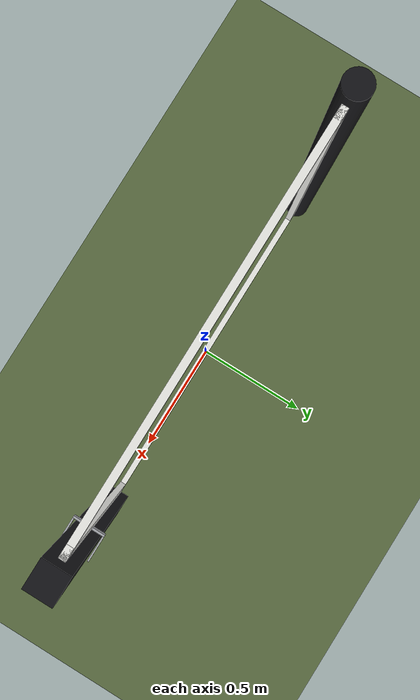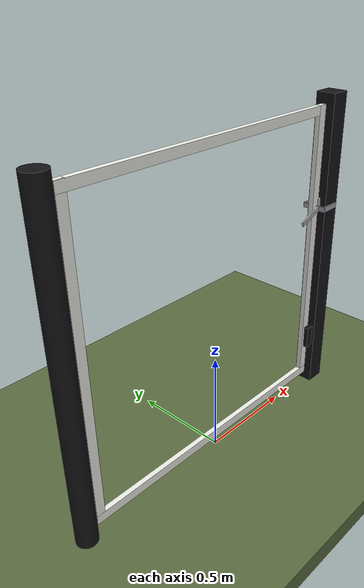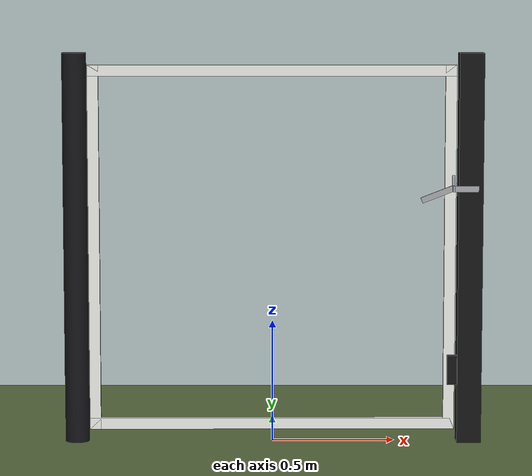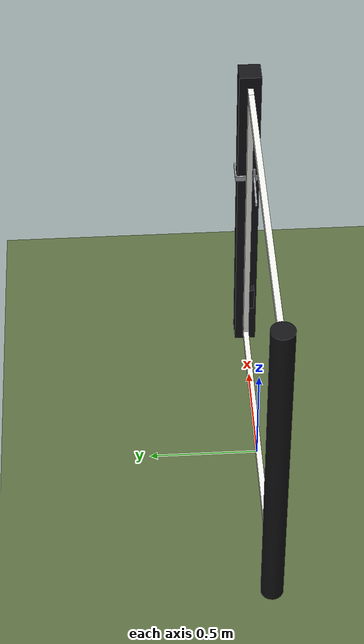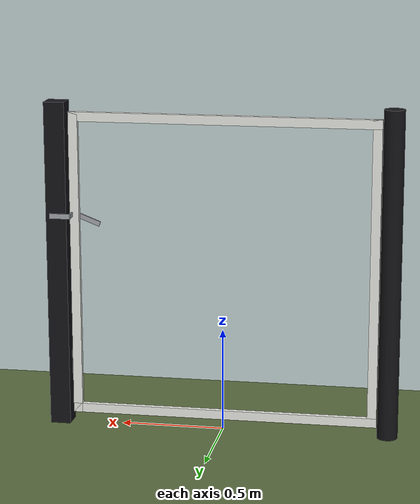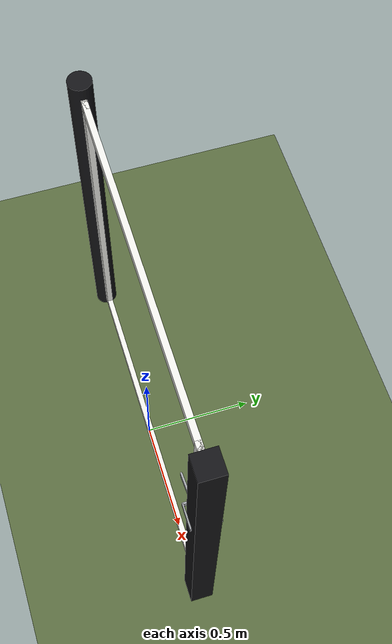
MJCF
<?xml version="1.0" ?>
<mujoco model="db0434_gate_swing_minimal">
  <compiler angle="radian" meshdir="../../hardware" texturedir="../../textures" autolimits="true" inertiafromgeom="false"/>
  <option timestep="0.002" integrator="implicitfast" cone="elliptic" impratio="10" noslip_iterations="3">
    <flag multiccd="enable"/>
  </option>
  <size memory="16M"/>
  <default>
    <geom condim="4" solref="0.005 1" solimp="0.95 0.99 0.001"/>
    <joint solreflimit="0.005 1" solimplimit="0.95 0.99 0.001"/>
    <tendon solreflimit="0.005 1"/>
    <equality solref="0.002 1"/>
  </default>
  <visual>
    <headlight ambient="0.4 0.4 0.4" diffuse="0.7 0.7 0.7" specular="0.2 0.2 0.2"/>
    <quality shadowsize="4096"/>
    <map znear="0.01" zfar="60"/>
  </visual>
  <asset>
    <material name="mat_floor" rgba="0.35 0.42 0.25 1" specular="0.2" shininess="0.15" reflectance="0"/>
    <material name="mat_wall" rgba="0.78 0.76 0.7 1" specular="0.2" shininess="0.1" reflectance="0"/>
    <material name="mat_leaf" rgba="0.93 0.93 0.91 1" specular="0.23" shininess="0.54" reflectance="0.02"/>
    <material name="mat_hinge" rgba="0.65 0.66 0.68 1" specular="0.74" shininess="0.5" reflectance="0.36"/>
    <material name="mat_op_steel_galvanized" rgba="0.65 0.66 0.68 1" specular="0.74" shininess="0.5" reflectance="0.36"/>
    <material name="mat_frame" rgba="0.08 0.08 0.09 1" specular="0.56" shininess="0.25" reflectance="0.24"/>
    <texture name="skybox" type="skybox" builtin="gradient" rgb1="0.6 0.7 0.85" rgb2="0.9 0.92 0.95" width="256" height="256"/>
  </asset>
  <worldbody>
    <light name="sun" pos="1.5 -2.5 4" dir="-0.3 0.5 -0.8" directional="true" diffuse="0.8 0.8 0.8" specular="0.3 0.3 0.3" castshadow="true"/>
    <light name="fill" pos="-1.5 2.5 3" dir="0.3 -0.5 -0.7" directional="true" diffuse="0.35 0.35 0.4" castshadow="false"/>
    <camera name="robot_view" pos="0 -2.05 1.334" xyaxes="1 0 0 0 0.26963 0.962964" fovy="52"/>
    <camera name="far_view" pos="0 2.05 1.334" xyaxes="-1 0 0 0 -0.26963 0.962964" fovy="52"/>
    <camera name="iso" pos="1.558 -1.722 1.662" xyaxes="0.741536 0.670913 0 -0.242917 0.268487 0.932151" fovy="46"/>
    <camera name="detail_handle" pos="0.916 -0.8245 1.385" xyaxes="0.97561 0.219512 0 -0.070934 0.315262 0.94635" fovy="38"/>
    <geom name="floor" type="box" size="6 6 0.05" pos="0 0 -0.05" material="mat_floor" group="0" contype="1" conaffinity="1" friction="0.8 0.005 0.0001" density="2400"/>
    <geom name="post_hinge" type="cylinder" size="0.05 0.8" pos="-0.806 0 0.8" material="mat_frame" group="0" contype="1" conaffinity="1" friction="0.6 0.005 0.0001" density="800"/>
    <geom name="post_latch" type="box" size="0.05 0.05 0.8" pos="0.806 0 0.8" material="mat_frame" group="0" contype="1" conaffinity="1" friction="0.6 0.005 0.0001" density="800"/>
    <geom name="gate_stop" type="box" size="0.02 0.012 0.06" pos="0.736 -0.0245 0.3" material="mat_frame" group="0" contype="1" conaffinity="1" friction="0.6 0.005 0.0001" density="800"/>
    <site name="approach_point" pos="0 -1.5 0" quat="1 0 0 0" size="0.05" rgba="0.2 0.9 0.2 0.5" group="4"/>
    <site name="goal_point" pos="0 1.5 0" quat="1 0 0 0" size="0.05" rgba="0.2 0.9 0.2 0.5" group="4"/>
    <site name="door_plane_center" pos="0 0 0.76" quat="1 0 0 0" size="0.02" rgba="0.2 0.9 0.2 0.5" group="4"/>
    <body name="leaf" pos="-0.756 0 0">
      <inertial pos="0.753 0 0.8" mass="65.199237" quat="-0.5 0.5 0.5 0.5" diaginertia="12.229442637 12.229442637 24.452093686"/>
      <joint name="leaf_hinge" type="hinge" axis="0 0 1" pos="0.003 0.05 0" limited="true" range="0 1.570796" damping="1.421431" frictionloss="8.499144" armature="0.02"/>
      <geom name="leaf_slab_col" type="box" size="0.75 0.0125 0.75" pos="0.753 0 0.8" material="mat_leaf" group="3" contype="1" conaffinity="1" rgba="0.8 0.3 0.3 0.25" friction="0.45 0.005 0.0001" density="1"/>
      <geom name="leaf_rail_b" type="box" size="0.75 0.0125 0.0225" pos="0.753 0 0.0725" material="mat_leaf" group="1" contype="0" conaffinity="0" density="1"/>
      <geom name="leaf_rail_t" type="box" size="0.75 0.0125 0.0225" pos="0.753 0 1.5275" material="mat_leaf" group="1" contype="0" conaffinity="0" density="1"/>
      <geom name="leaf_stile_h" type="box" size="0.0225 0.0125 0.75" pos="0.0255 0 0.8" material="mat_leaf" group="1" contype="0" conaffinity="0" density="1"/>
      <geom name="leaf_stile_l" type="box" size="0.0225 0.0125 0.75" pos="1.4805 0 0.8" material="mat_leaf" group="1" contype="0" conaffinity="0" density="1"/>
      <site name="leaf_edge_mid" pos="1.503 0 0.75" quat="1 0 0 0" size="0.02" rgba="0.2 0.9 0.2 0.5" group="4"/>
      <body name="leaf_fork" pos="1.363 0 1">
        <inertial pos="0.125752 -0.009183 0.043882" mass="0.210369" quat="0.981159 -0.024722 -0.116685 0.151989" diaginertia="0.000361701 0.000708802 0.000997365"/>
        <joint name="leaf_fork_hinge" type="hinge" axis="0 -1 0" limited="true" range="0 1.2" damping="0.037477" frictionloss="0.006367" armature="0.0001"/>
        <geom name="leaf_fork_arm" type="box" size="0.069176 0.004 0.012" pos="0.0645 -0.0245 0.025" quat="0.982958 0 -0.183833 0" material="mat_op_steel_galvanized" group="0" contype="1" conaffinity="1" friction="0.6 0.005 0.0001" density="2500"/>
        <geom name="leaf_fork_tine_n" type="box" size="0.05 0.003 0.012" pos="0.179 -0.059 0.05" material="mat_op_steel_galvanized" group="0" contype="1" conaffinity="1" friction="0.6 0.005 0.0001" density="2500"/>
        <geom name="leaf_fork_tine_p" type="box" size="0.05 0.003 0.012" pos="0.179 0.059 0.05" material="mat_op_steel_galvanized" group="0" contype="1" conaffinity="1" friction="0.6 0.005 0.0001" density="2500"/>
        <geom name="leaf_fork_bridge" type="box" size="0.004 0.062 0.012" pos="0.129 0 0.05" material="mat_op_steel_galvanized" group="0" contype="1" conaffinity="1" friction="0.6 0.005 0.0001" density="2500"/>
        <geom name="leaf_fork_handle" type="capsule" size="0.006 0.018" pos="0.129 -0.0245 0.08" material="mat_op_steel_galvanized" group="0" contype="1" conaffinity="1" friction="0.7 0.01 0.0001" density="2500"/>
        <site name="leaf_fork_grip" pos="0.129 -0.0245 0.105" quat="1 0 0 0" size="0.012" rgba="0.2 0.9 0.2 0.5" group="4"/>
      </body>
    </body>
  </worldbody>
  <sensor>
    <jointpos name="leaf_hinge_pos" joint="leaf_hinge"/>
    <jointvel name="leaf_hinge_vel" joint="leaf_hinge"/>
    <jointpos name="leaf_fork_hinge_pos" joint="leaf_fork_hinge"/>
    <jointvel name="leaf_fork_hinge_vel" joint="leaf_fork_hinge"/>
  </sensor>
</mujoco>
